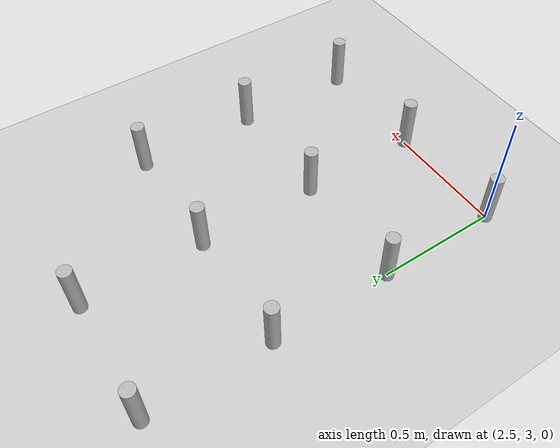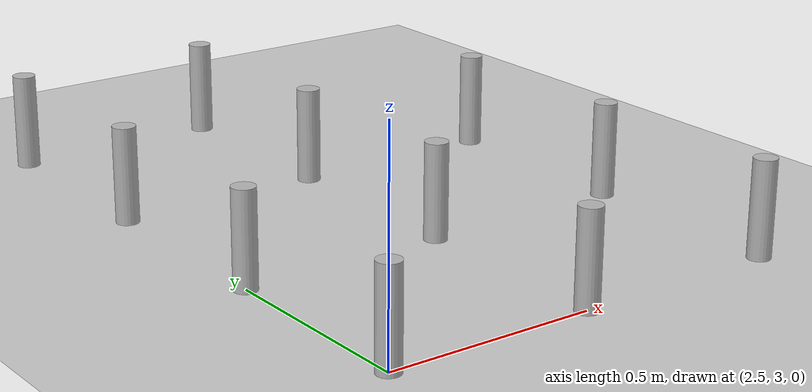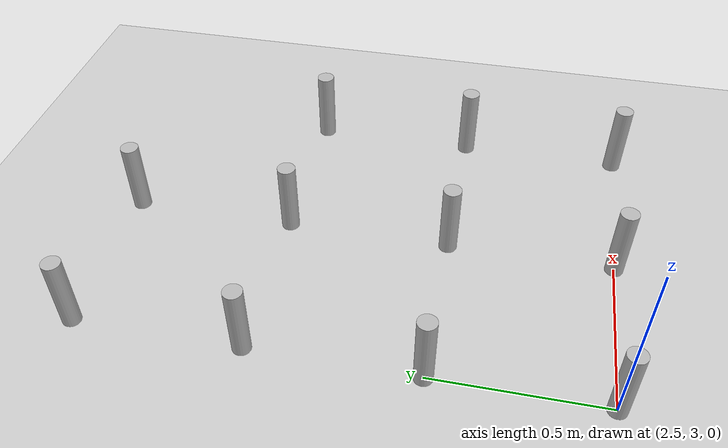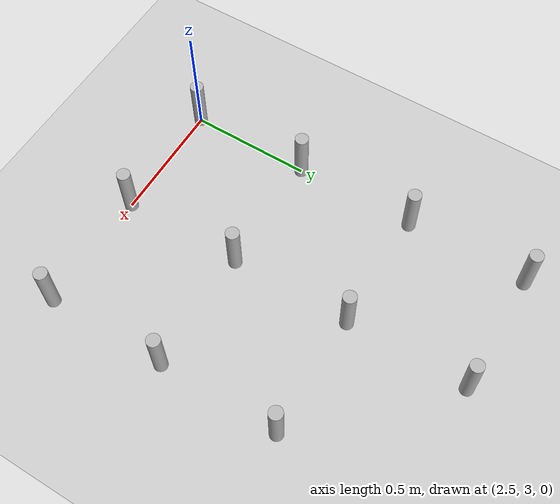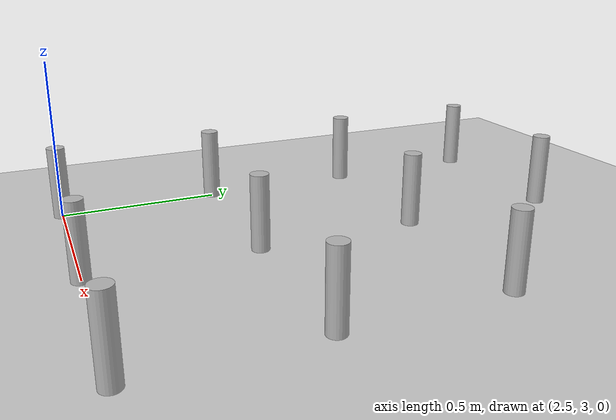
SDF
<sdf version="1.6">
 <world name="default">
  <model name="ground_plane">
   <static>1</static>
   <link name="link">
    <collision name="collision">
     <geometry><plane><normal>0 0 1</normal><size>100 100</size></plane></geometry>
     <surface><friction><ode><mu>100</mu><mu2>50</mu2></ode></friction></surface>
    </collision>
    <visual name="visual">
     <cast_shadows>0</cast_shadows>
     <geometry><plane><normal>0 0 1</normal><size>100 100</size></plane></geometry>
     <material>
      <script><uri>file://media/materials/scripts/gazebo.material</uri><name>Gazebo/Grey</name></script>
     </material>
    </visual>
   </link>
  </model>
  <model name="can2.53.0">
   <link name="link">
    <pose>0 0 0.115 0 -0 0</pose>
    <inertial>
     <mass>39</mass>
     <inertia><ixx>0.00058</ixx><ixy>0</ixy><ixz>0</ixz><iyy>0.00058</iyy><iyz>0</iyz><izz>0.00019</izz></inertia>
    </inertial>
    <collision name="collision">
     <geometry><cylinder><radius>0.0275</radius><length>0.23</length></cylinder></geometry>
    </collision>
    <visual name="visual">
     <geometry><cylinder><radius>0.0275</radius><length>0.23</length></cylinder></geometry>
     <material>
      <script>
       <uri>model://beer/materials/scripts</uri>
       <uri>model://beer/materials/textures</uri>
       <name>Beer/Diffuse</name>
      </script>
     </material>
    </visual>
   </link>
   <pose>2.5 3.0 -2e-06 1e-06 0 -9.5e-05</pose>
  </model>
  <model name="can2.53.5">
   <link name="link">
    <pose>0 0 0.115 0 -0 0</pose>
    <inertial>
     <mass>39</mass>
     <inertia><ixx>0.00058</ixx><ixy>0</ixy><ixz>0</ixz><iyy>0.00058</iyy><iyz>0</iyz><izz>0.00019</izz></inertia>
    </inertial>
    <collision name="collision">
     <geometry><cylinder><radius>0.0275</radius><length>0.23</length></cylinder></geometry>
    </collision>
    <visual name="visual">
     <geometry><cylinder><radius>0.0275</radius><length>0.23</length></cylinder></geometry>
     <material>
      <script>
       <uri>model://beer/materials/scripts</uri>
       <uri>model://beer/materials/textures</uri>
       <name>Beer/Diffuse</name>
      </script>
     </material>
    </visual>
   </link>
   <pose>2.5 3.5 -2e-06 1e-06 0 -9.5e-05</pose>
  </model>
  <model name="can2.54.0">
   <link name="link">
    <pose>0 0 0.115 0 -0 0</pose>
    <inertial>
     <mass>39</mass>
     <inertia><ixx>0.00058</ixx><ixy>0</ixy><ixz>0</ixz><iyy>0.00058</iyy><iyz>0</iyz><izz>0.00019</izz></inertia>
    </inertial>
    <collision name="collision">
     <geometry><cylinder><radius>0.0275</radius><length>0.23</length></cylinder></geometry>
    </collision>
    <visual name="visual">
     <geometry><cylinder><radius>0.0275</radius><length>0.23</length></cylinder></geometry>
     <material>
      <script>
       <uri>model://beer/materials/scripts</uri>
       <uri>model://beer/materials/textures</uri>
       <name>Beer/Diffuse</name>
      </script>
     </material>
    </visual>
   </link>
   <pose>2.5 4.0 -2e-06 1e-06 0 -9.5e-05</pose>
  </model>
  <model name="can2.54.5">
   <link name="link">
    <pose>0 0 0.115 0 -0 0</pose>
    <inertial>
     <mass>39</mass>
     <inertia><ixx>0.00058</ixx><ixy>0</ixy><ixz>0</ixz><iyy>0.00058</iyy><iyz>0</iyz><izz>0.00019</izz></inertia>
    </inertial>
    <collision name="collision">
     <geometry><cylinder><radius>0.0275</radius><length>0.23</length></cylinder></geometry>
    </collision>
    <visual name="visual">
     <geometry><cylinder><radius>0.0275</radius><length>0.23</length></cylinder></geometry>
     <material>
      <script>
       <uri>model://beer/materials/scripts</uri>
       <uri>model://beer/materials/textures</uri>
       <name>Beer/Diffuse</name>
      </script>
     </material>
    </visual>
   </link>
   <pose>2.5 4.5 -2e-06 1e-06 0 -9.5e-05</pose>
  </model>
  <model name="can3.03.0">
   <link name="link">
    <pose>0 0 0.115 0 -0 0</pose>
    <inertial>
     <mass>39</mass>
     <inertia><ixx>0.00058</ixx><ixy>0</ixy><ixz>0</ixz><iyy>0.00058</iyy><iyz>0</iyz><izz>0.00019</izz></inertia>
    </inertial>
    <collision name="collision">
     <geometry><cylinder><radius>0.0275</radius><length>0.23</length></cylinder></geometry>
    </collision>
    <visual name="visual">
     <geometry><cylinder><radius>0.0275</radius><length>0.23</length></cylinder></geometry>
     <material>
      <script>
       <uri>model://beer/materials/scripts</uri>
       <uri>model://beer/materials/textures</uri>
       <name>Beer/Diffuse</name>
      </script>
     </material>
    </visual>
   </link>
   <pose>3.0 3.0 -2e-06 1e-06 0 -9.5e-05</pose>
  </model>
  <model name="can3.03.5">
   <link name="link">
    <pose>0 0 0.115 0 -0 0</pose>
    <inertial>
     <mass>39</mass>
     <inertia><ixx>0.00058</ixx><ixy>0</ixy><ixz>0</ixz><iyy>0.00058</iyy><iyz>0</iyz><izz>0.00019</izz></inertia>
    </inertial>
    <collision name="collision">
     <geometry><cylinder><radius>0.0275</radius><length>0.23</length></cylinder></geometry>
    </collision>
    <visual name="visual">
     <geometry><cylinder><radius>0.0275</radius><length>0.23</length></cylinder></geometry>
     <material>
      <script>
       <uri>model://beer/materials/scripts</uri>
       <uri>model://beer/materials/textures</uri>
       <name>Beer/Diffuse</name>
      </script>
     </material>
    </visual>
   </link>
   <pose>3.0 3.5 -2e-06 1e-06 0 -9.5e-05</pose>
  </model>
  <model name="can3.04.0">
   <link name="link">
    <pose>0 0 0.115 0 -0 0</pose>
    <inertial>
     <mass>39</mass>
     <inertia><ixx>0.00058</ixx><ixy>0</ixy><ixz>0</ixz><iyy>0.00058</iyy><iyz>0</iyz><izz>0.00019</izz></inertia>
    </inertial>
    <collision name="collision">
     <geometry><cylinder><radius>0.0275</radius><length>0.23</length></cylinder></geometry>
    </collision>
    <visual name="visual">
     <geometry><cylinder><radius>0.0275</radius><length>0.23</length></cylinder></geometry>
     <material>
      <script>
       <uri>model://beer/materials/scripts</uri>
       <uri>model://beer/materials/textures</uri>
       <name>Beer/Diffuse</name>
      </script>
     </material>
    </visual>
   </link>
   <pose>3.0 4.0 -2e-06 1e-06 0 -9.5e-05</pose>
  </model>
  <model name="can3.04.5">
   <link name="link">
    <pose>0 0 0.115 0 -0 0</pose>
    <inertial>
     <mass>39</mass>
     <inertia><ixx>0.00058</ixx><ixy>0</ixy><ixz>0</ixz><iyy>0.00058</iyy><iyz>0</iyz><izz>0.00019</izz></inertia>
    </inertial>
    <collision name="collision">
     <geometry><cylinder><radius>0.0275</radius><length>0.23</length></cylinder></geometry>
    </collision>
    <visual name="visual">
     <geometry><cylinder><radius>0.0275</radius><length>0.23</length></cylinder></geometry>
     <material>
      <script>
       <uri>model://beer/materials/scripts</uri>
       <uri>model://beer/materials/textures</uri>
       <name>Beer/Diffuse</name>
      </script>
     </material>
    </visual>
   </link>
   <pose>3.0 4.5 -2e-06 1e-06 0 -9.5e-05</pose>
  </model>
  <model name="can3.53.0">
   <link name="link">
    <pose>0 0 0.115 0 -0 0</pose>
    <inertial>
     <mass>39</mass>
     <inertia><ixx>0.00058</ixx><ixy>0</ixy><ixz>0</ixz><iyy>0.00058</iyy><iyz>0</iyz><izz>0.00019</izz></inertia>
    </inertial>
    <collision name="collision">
     <geometry><cylinder><radius>0.0275</radius><length>0.23</length></cylinder></geometry>
    </collision>
    <visual name="visual">
     <geometry><cylinder><radius>0.0275</radius><length>0.23</length></cylinder></geometry>
     <material>
      <script>
       <uri>model://beer/materials/scripts</uri>
       <uri>model://beer/materials/textures</uri>
       <name>Beer/Diffuse</name>
      </script>
     </material>
    </visual>
   </link>
   <pose>3.5 3.0 -2e-06 1e-06 0 -9.5e-05</pose>
  </model>
  <model name="can3.53.5">
   <link name="link">
    <pose>0 0 0.115 0 -0 0</pose>
    <inertial>
     <mass>39</mass>
     <inertia><ixx>0.00058</ixx><ixy>0</ixy><ixz>0</ixz><iyy>0.00058</iyy><iyz>0</iyz><izz>0.00019</izz></inertia>
    </inertial>
    <collision name="collision">
     <geometry><cylinder><radius>0.0275</radius><length>0.23</length></cylinder></geometry>
    </collision>
    <visual name="visual">
     <geometry><cylinder><radius>0.0275</radius><length>0.23</length></cylinder></geometry>
     <material>
      <script>
       <uri>model://beer/materials/scripts</uri>
       <uri>model://beer/materials/textures</uri>
       <name>Beer/Diffuse</name>
      </script>
     </material>
    </visual>
   </link>
   <pose>3.5 3.5 -2e-06 1e-06 0 -9.5e-05</pose>
  </model>
  <model name="can3.54.0">
   <link name="link">
    <pose>0 0 0.115 0 -0 0</pose>
    <inertial>
     <mass>39</mass>
     <inertia><ixx>0.00058</ixx><ixy>0</ixy><ixz>0</ixz><iyy>0.00058</iyy><iyz>0</iyz><izz>0.00019</izz></inertia>
    </inertial>
    <collision name="collision">
     <geometry><cylinder><radius>0.0275</radius><length>0.23</length></cylinder></geometry>
    </collision>
    <visual name="visual">
     <geometry><cylinder><radius>0.0275</radius><length>0.23</length></cylinder></geometry>
     <material>
      <script>
       <uri>model://beer/materials/scripts</uri>
       <uri>model://beer/materials/textures</uri>
       <name>Beer/Diffuse</name>
      </script>
     </material>
    </visual>
   </link>
   <pose>3.5 4.0 -2e-06 1e-06 0 -9.5e-05</pose>
  </model>
 </world>
</sdf>
